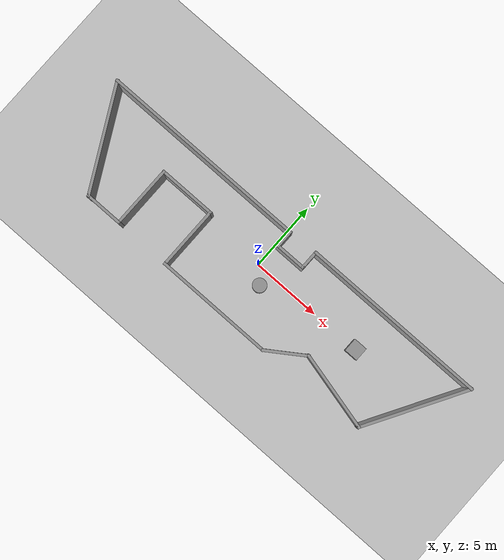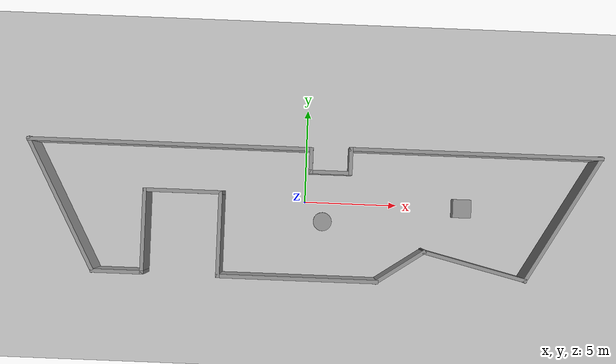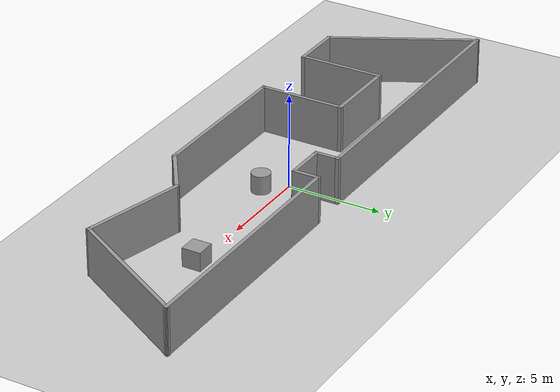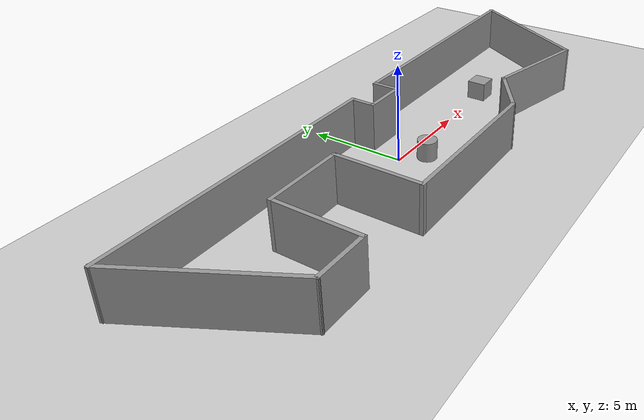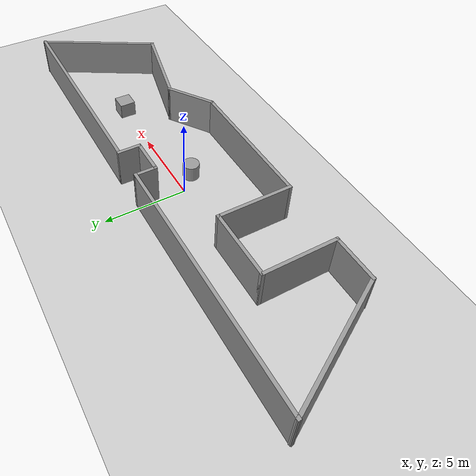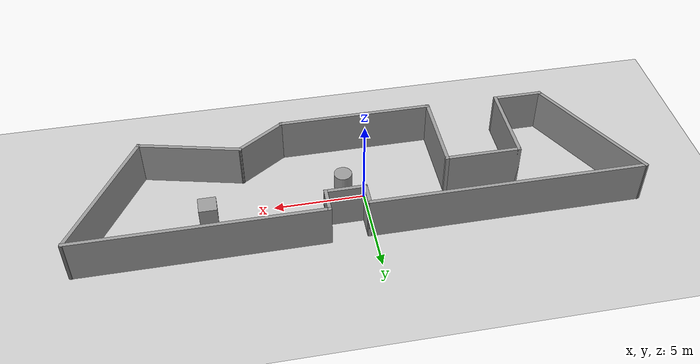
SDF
<sdf version="1.4">
 <world name="default">
  <light name="sun" type="directional">
   <pose>0 0 10 0 -0 0</pose>
   <diffuse>0.8 0.8 0.8 1</diffuse>
   <specular>0.2 0.2 0.2 1</specular>
   <attenuation>
    <range>1000</range>
    <constant>0.9</constant>
    <linear>0.01</linear>
    <quadratic>0.001</quadratic>
   </attenuation>
   <direction>-0.5 0.1 -0.9</direction>
  </light>
  <model name="ground_plane">
   <static>1</static>
   <link name="link">
    <collision name="collision">
     <geometry><plane><normal>0 0 1</normal><size>100 100</size></plane></geometry>
     <surface><friction><ode><mu>100</mu><mu2>50</mu2></ode></friction></surface>
    </collision>
    <visual name="visual">
     <cast_shadows>0</cast_shadows>
     <geometry><plane><normal>0 0 1</normal><size>100 100</size></plane></geometry>
     <material>
      <script><uri>file://media/materials/scripts/gazebo.material</uri><name>Gazebo/Grey</name></script>
     </material>
    </visual>
    <velocity_decay><linear>0</linear><angular>0</angular></velocity_decay>
   </link>
  </model>
  <physics type="ode">
   <max_step_size>0.001</max_step_size>
   <real_time_factor>1</real_time_factor>
   <real_time_update_rate>1000</real_time_update_rate>
   <gravity>0 0 -9.8</gravity>
  </physics>
  <scene><ambient>0.4 0.4 0.4 1</ambient><background>0.7 0.7 0.7 1</background><shadows>1</shadows></scene>
  <model name="BuildingDefaultName">
   <pose>1.43267 2.72833 0 0 -0 0</pose>
   <link name="Wall_1">
    <collision name="Wall_1_Collision">
     <geometry><box><size>15.2504 0.2 2.5</size></box></geometry>
     <pose>0 0 1.25 0 -0 0</pose>
    </collision>
    <visual name="Wall_1_Visual">
     <pose>0 0 1.25 0 -0 0</pose>
     <geometry><box><size>15.2504 0.2 2.5</size></box></geometry>
     <material>
      <script><uri>file://media/materials/scripts/gazebo.material</uri><name>Gazebo/Grey</name></script>
     </material>
    </visual>
    <velocity_decay><linear>0</linear><angular>0</angular></velocity_decay>
    <pose>-8.69176 0.123661 0 0 -0 0</pose>
   </link>
   <link name="Wall_10">
    <collision name="Wall_10_Collision">
     <geometry><box><size>4.63558 0.2 2.5</size></box></geometry>
     <pose>0 0 1.25 0 -0 0</pose>
    </collision>
    <visual name="Wall_10_Visual">
     <pose>0 0 1.25 0 -0 0</pose>
     <geometry><box><size>4.63558 0.2 2.5</size></box></geometry>
     <material>
      <script><uri>file://media/materials/scripts/gazebo.material</uri><name>Gazebo/Grey</name></script>
     </material>
    </visual>
    <velocity_decay><linear>0</linear><angular>0</angular></velocity_decay>
    <pose>-5.90805 -4.57194 0 0 -0 1.5708</pose>
   </link>
   <link name="Wall_11">
    <collision name="Wall_11_Collision">
     <geometry><box><size>4.23791 0.2 2.5</size></box></geometry>
     <pose>0 0 1.25 0 -0 0</pose>
    </collision>
    <visual name="Wall_11_Visual">
     <pose>0 0 1.25 0 -0 0</pose>
     <geometry><box><size>4.23791 0.2 2.5</size></box></geometry>
     <material>
      <script><uri>file://media/materials/scripts/gazebo.material</uri><name>Gazebo/Grey</name></script>
     </material>
    </visual>
    <velocity_decay><linear>0</linear><angular>0</angular></velocity_decay>
    <pose>-7.92701 -2.35415 0 0 -0 3.14159</pose>
   </link>
   <link name="Wall_12">
    <collision name="Wall_12_Collision">
     <geometry><box><size>4.60499 0.2 2.5</size></box></geometry>
     <pose>0 0 1.25 0 -0 0</pose>
    </collision>
    <visual name="Wall_12_Visual">
     <pose>0 0 1.25 0 -0 0</pose>
     <geometry><box><size>4.60499 0.2 2.5</size></box></geometry>
     <material>
      <script><uri>file://media/materials/scripts/gazebo.material</uri><name>Gazebo/Grey</name></script>
     </material>
    </visual>
    <velocity_decay><linear>0</linear><angular>0</angular></velocity_decay>
    <pose>-9.94596 -4.55664 0 0 0 -1.5708</pose>
   </link>
   <link name="Wall_13">
    <collision name="Wall_13_Collision">
     <geometry><box><size>2.83076 0.2 2.5</size></box></geometry>
     <pose>0 0 1.25 0 -0 0</pose>
    </collision>
    <visual name="Wall_13_Visual">
     <pose>0 0 1.25 0 -0 0</pose>
     <geometry><box><size>2.83076 0.2 2.5</size></box></geometry>
     <material>
      <script><uri>file://media/materials/scripts/gazebo.material</uri><name>Gazebo/Grey</name></script>
     </material>
    </visual>
    <velocity_decay><linear>0</linear><angular>0</angular></velocity_decay>
    <pose>-11.2613 -6.75914 0 0 -0 3.14159</pose>
   </link>
   <link name="Wall_14">
    <collision name="Wall_14_Collision">
     <geometry><box><size>7.98616 0.2 2.5</size></box></geometry>
     <pose>0 0 1.25 0 -0 0</pose>
    </collision>
    <visual name="Wall_14_Visual">
     <pose>0 0 1.25 0 -0 0</pose>
     <geometry><box><size>7.98616 0.2 2.5</size></box></geometry>
     <material>
      <script><uri>file://media/materials/scripts/gazebo.material</uri><name>Gazebo/Grey</name></script>
     </material>
    </visual>
    <velocity_decay><linear>0</linear><angular>0</angular></velocity_decay>
    <pose>-14.3968 -3.31774 0 0 -0 2.05729</pose>
   </link>
   <link name="Wall_2">
    <collision name="Wall_2_Collision">
     <geometry><box><size>1.39302 0.2 2.5</size></box></geometry>
     <pose>0 0 1.25 0 -0 0</pose>
    </collision>
    <visual name="Wall_2_Visual">
     <pose>0 0 1.25 0 -0 0</pose>
     <geometry><box><size>1.39302 0.2 2.5</size></box></geometry>
     <material>
      <script><uri>file://media/materials/scripts/gazebo.material</uri><name>Gazebo/Grey</name></script>
     </material>
    </visual>
    <velocity_decay><linear>0</linear><angular>0</angular></velocity_decay>
    <pose>-1.16657 -0.472848 0 0 0 -1.5708</pose>
   </link>
   <link name="Wall_3">
    <collision name="Wall_3_Collision">
     <geometry><box><size>2.31073 0.2 2.5</size></box></geometry>
     <pose>0 0 1.25 0 -0 0</pose>
    </collision>
    <visual name="Wall_3_Visual">
     <pose>0 0 1.25 0 -0 0</pose>
     <geometry><box><size>2.31073 0.2 2.5</size></box></geometry>
     <material>
      <script><uri>file://media/materials/scripts/gazebo.material</uri><name>Gazebo/Grey</name></script>
     </material>
    </visual>
    <velocity_decay><linear>0</linear><angular>0</angular></velocity_decay>
    <pose>-0.111202 -1.06936 0 0 -0 0</pose>
   </link>
   <link name="Wall_4">
    <collision name="Wall_4_Collision">
     <geometry><box><size>1.48479 0.2 2.5</size></box></geometry>
     <pose>0 0 1.25 0 -0 0</pose>
    </collision>
    <visual name="Wall_4_Visual">
     <pose>0 0 1.25 0 -0 0</pose>
     <geometry><box><size>1.48479 0.2 2.5</size></box></geometry>
     <material>
      <script><uri>file://media/materials/scripts/gazebo.material</uri><name>Gazebo/Grey</name></script>
     </material>
    </visual>
    <velocity_decay><linear>0</linear><angular>0</angular></velocity_decay>
    <pose>0.944161 -0.426963 0 0 -0 1.5708</pose>
   </link>
   <link name="Wall_5">
    <collision name="Wall_5_Collision">
     <geometry><box><size>13.5373 0.2 2.5</size></box></geometry>
     <pose>0 0 1.25 0 -0 0</pose>
    </collision>
    <visual name="Wall_5_Visual">
     <pose>0 0 1.25 0 -0 0</pose>
     <geometry><box><size>13.5373 0.2 2.5</size></box></geometry>
     <material>
      <script><uri>file://media/materials/scripts/gazebo.material</uri><name>Gazebo/Grey</name></script>
     </material>
    </visual>
    <velocity_decay><linear>0</linear><angular>0</angular></velocity_decay>
    <pose>7.61283 0.215432 0 0 -0 0</pose>
   </link>
   <link name="Wall_6">
    <collision name="Wall_6_Collision">
     <geometry><box><size>7.87595 0.2 2.5</size></box></geometry>
     <pose>0 0 1.25 0 -0 0</pose>
    </collision>
    <visual name="Wall_6_Visual">
     <pose>0 0 1.25 0 -0 0</pose>
     <geometry><box><size>7.87595 0.2 2.5</size></box></geometry>
     <material>
      <script><uri>file://media/materials/scripts/gazebo.material</uri><name>Gazebo/Grey</name></script>
     </material>
    </visual>
    <velocity_decay><linear>0</linear><angular>0</angular></velocity_decay>
    <pose>12.3543 -3.10361 0 0 0 -2.09686</pose>
   </link>
   <link name="Wall_7">
    <collision name="Wall_7_Collision">
     <geometry><box><size>5.77196 0.2 2.5</size></box></geometry>
     <pose>0 0 1.25 0 -0 0</pose>
    </collision>
    <visual name="Wall_7_Visual">
     <pose>0 0 1.25 0 -0 0</pose>
     <geometry><box><size>5.77196 0.2 2.5</size></box></geometry>
     <material>
      <script><uri>file://media/materials/scripts/gazebo.material</uri><name>Gazebo/Grey</name></script>
     </material>
    </visual>
    <velocity_decay><linear>0</linear><angular>0</angular></velocity_decay>
    <pose>7.7199 -5.76496 0 0 -0 2.90327</pose>
   </link>
   <link name="Wall_8">
    <collision name="Wall_8_Collision">
     <geometry><box><size>3.19503 0.2 2.5</size></box></geometry>
     <pose>0 0 1.25 0 -0 0</pose>
    </collision>
    <visual name="Wall_8_Visual">
     <pose>0 0 1.25 0 -0 0</pose>
     <geometry><box><size>3.19503 0.2 2.5</size></box></geometry>
     <material>
      <script><uri>file://media/materials/scripts/gazebo.material</uri><name>Gazebo/Grey</name></script>
     </material>
    </visual>
    <velocity_decay><linear>0</linear><angular>0</angular></velocity_decay>
    <pose>3.77376 -5.9485 0 0 0 -2.54509</pose>
   </link>
   <link name="Wall_9">
    <collision name="Wall_9_Collision">
     <geometry><box><size>8.6429 0.2 2.5</size></box></geometry>
     <pose>0 0 1.25 0 -0 0</pose>
    </collision>
    <visual name="Wall_9_Visual">
     <pose>0 0 1.25 0 -0 0</pose>
     <geometry><box><size>8.6429 0.2 2.5</size></box></geometry>
     <material>
      <script><uri>file://media/materials/scripts/gazebo.material</uri><name>Gazebo/Grey</name></script>
     </material>
    </visual>
    <velocity_decay><linear>0</linear><angular>0</angular></velocity_decay>
    <pose>-1.6866 -6.78973 0 0 -0 3.14159</pose>
   </link>
   <static>1</static>
  </model>
  <model name="unit_cylinder_1">
   <pose>1 -1 0.5 0 -0 0</pose>
   <link name="link">
    <inertial>
     <mass>1</mass>
     <inertia><ixx>1</ixx><ixy>0</ixy><ixz>0</ixz><iyy>1</iyy><iyz>0</iyz><izz>1</izz></inertia>
    </inertial>
    <collision name="collision">
     <geometry><cylinder><radius>0.5</radius><length>1</length></cylinder></geometry>
    </collision>
    <visual name="visual">
     <geometry><cylinder><radius>0.5</radius><length>1</length></cylinder></geometry>
     <material>
      <script><uri>file://media/materials/scripts/gazebo.material</uri><name>Gazebo/Grey</name></script>
     </material>
    </visual>
    <velocity_decay><linear>0</linear><angular>0</angular></velocity_decay>
   </link>
   <static>0</static>
  </model>
  <model name="unit_box_1">
   <pose>8.54527 0 0.5 0 -0 0</pose>
   <link name="link">
    <inertial>
     <mass>1</mass>
     <inertia><ixx>1</ixx><ixy>0</ixy><ixz>0</ixz><iyy>1</iyy><iyz>0</iyz><izz>1</izz></inertia>
    </inertial>
    <collision name="collision"><geometry><box><size>1 1 1</size></box></geometry></collision>
    <visual name="visual">
     <geometry><box><size>1 1 1</size></box></geometry>
     <material>
      <script><uri>file://media/materials/scripts/gazebo.material</uri><name>Gazebo/Grey</name></script>
     </material>
    </visual>
    <velocity_decay><linear>0</linear><angular>0</angular></velocity_decay>
   </link>
   <static>0</static>
  </model>
 </world>
</sdf>
